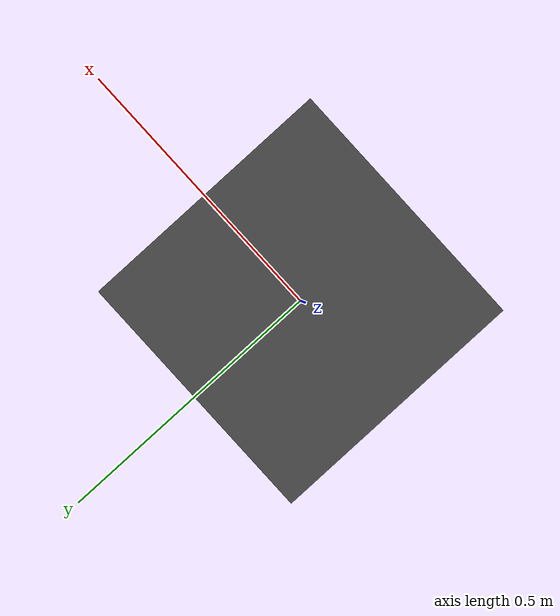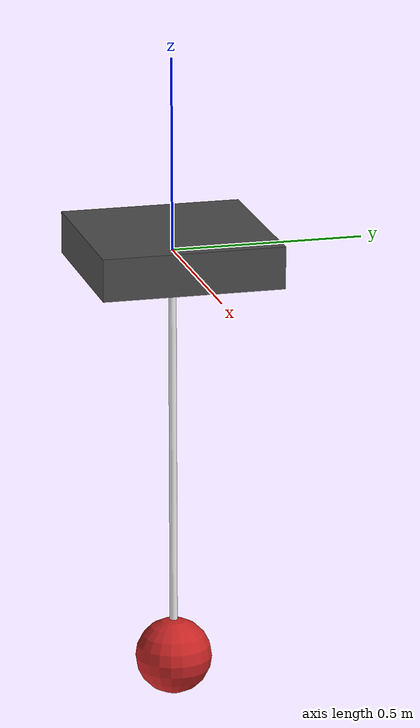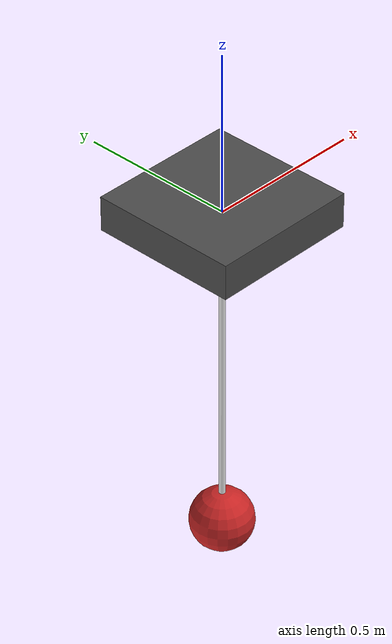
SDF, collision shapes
<?xml version='1.0'?>
<sdf version='1.6'>
  <model name='iris_pendulum'>
    <static>false</static>

    <!-- Base Link for Iris -->
    <link name='base_link'>
      <pose>0 0 0 0 0 0</pose>
      <inertial>
        <pose>0 0 0 0 0 0</pose>
        <mass>1.5</mass>
        <inertia>
          <ixx>0.029125</ixx>
          <ixy>0</ixy>
          <ixz>0</ixz>
          <iyy>0.029125</iyy>
          <iyz>0</iyz>
          <izz>0.055225</izz>
        </inertia>
      </inertial>
      <collision name='base_link_inertia_collision'>
        <pose>0 0 0 0 0 0</pose>
        <geometry>
          <box>
            <size>0.47 0.47 0.11</size>
          </box>
        </geometry>
        <surface>
          <contact>
            <ode>
              <min_depth>0.001</min_depth>
              <max_vel>0</max_vel>
            </ode>
          </contact>
          <friction>
            <ode/>
          </friction>
        </surface>
      </collision>
      <visual name='base_link_inertia_visual'>
        <pose>0 0 0 0 0 0</pose>
        <geometry>
          <mesh>
            <scale>1 1 1</scale>
            <uri>model://iris_pendulum/meshes/iris.stl</uri>
          </mesh>
        </geometry>
        <material>
          <script>
            <name>Gazebo/DarkGrey</name>
            <uri>file://media/materials/scripts/gazebo.material</uri>
          </script>
        </material>
      </visual>
      <gravity>1</gravity>
      <velocity_decay/>
    </link>

    <!-- Pendulum -->
    <link name='pendulum'>
        <pose>0 0 -0.5 0 0 0</pose>
        <inertial>
          <mass>0.001</mass>
          <inertia>
            <ixx>0.0008333</ixx>
            <ixy>0</ixy>
            <ixz>0</ixz>
            <iyy>0.0008333</iyy>
            <iyz>0</iyz>
            <izz>0.00005</izz>
          </inertia>
        </inertial>
        <collision name='pendulum_collision'>
          <geometry>
            <cylinder>
              <radius>0.01</radius>
              <length>1.0</length>
            </cylinder>
          </geometry>
          <surface>
            <contact>
              <ode/>
            </contact>
            <friction>
              <ode/>
            </friction>
          </surface>
        </collision>
        <visual name='pendulum_visual'>
          <geometry>
            <cylinder>
              <radius>0.01</radius>
              <length>1.0</length>
            </cylinder>
          </geometry>
          <material>
            <script>
              <name>Gazebo/White</name>
              <uri>file://media/materials/scripts/gazebo.material</uri>
            </script>
          </material>
        </visual>
        <gravity>1</gravity>
    </link>

    <link name='load'>
      <pose>0 0 -1.1 0 0 0</pose>
      <inertial>
        <mass>0.2</mass>
        <inertia>
          <ixx>0.0008</ixx>
          <ixy>0</ixy>
          <ixz>0</ixz>
          <iyy>0.0008</iyy>
          <iyz>0</iyz>
          <izz>0.0008</izz>
        </inertia>
      </inertial>

      <collision name='load_collision'>
        <geometry>
          <sphere>
            <radius>0.1 0.1 0.1</radius>
          </sphere>
        </geometry>
        <surface>
          <contact>
            <ode/>
          </contact>
          <friction>
            <ode/>
          </friction>
        </surface>
      </collision>

      <visual name='load_visual'>
        <geometry>
          <sphere>
            <radius>0.1 0.1 0.1</radius>
          </sphere>
        </geometry>
        <material>
          <script>
            <name>Gazebo/Red</name>
            <uri>file://media/materials/scripts/gazebo.material</uri>
          </script>
        </material>
      </visual>
      <gravity>1</gravity>
    </link>

    <joint name='load_joint' type='universal'>
      <pose>0 0 0.1 0 0 0</pose>
      <child>load</child>
      <parent>pendulum</parent>
    </joint>

    <joint name='pendulum_joint' type='universal'>
      <pose>0 0 0.5 0 0 0</pose>
      <axis>
        <xyz>1 0 0</xyz>
      </axis>
      <axis2>
        <xyz>0 1 0</xyz>
      </axis2>
      <child>pendulum</child>
      <parent>base_link</parent>
    </joint>

  <!-- Pendulum Plugin -->
  <plugin name="MissionPlugin" filename="libMission_plugin.so" />
  </model>
</sdf>
